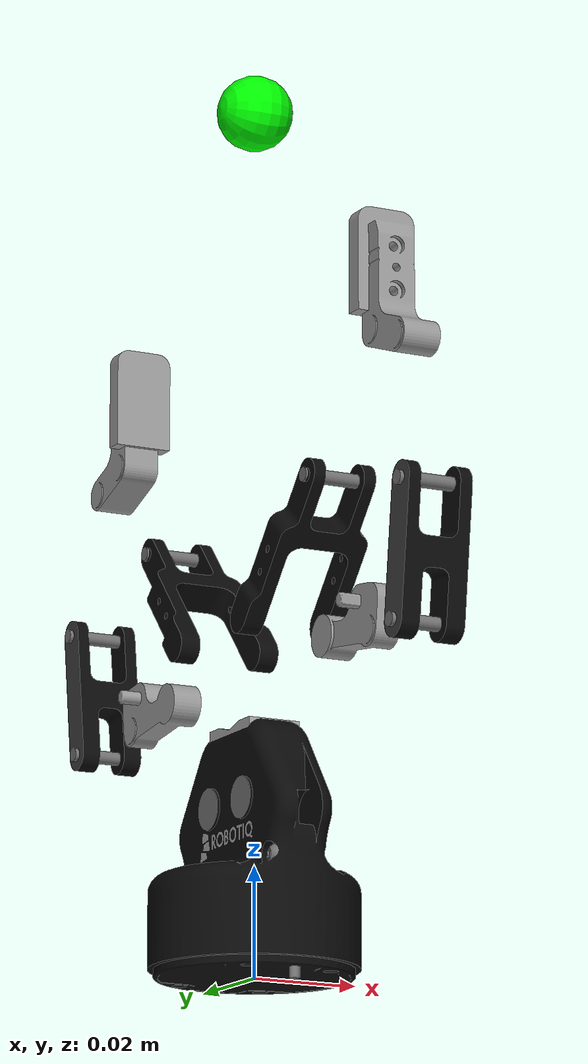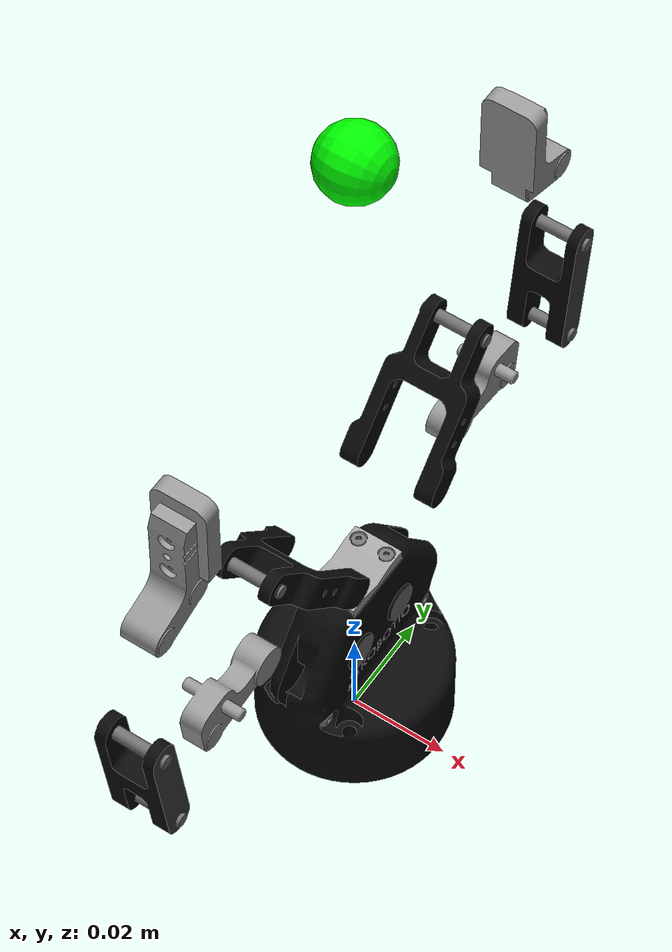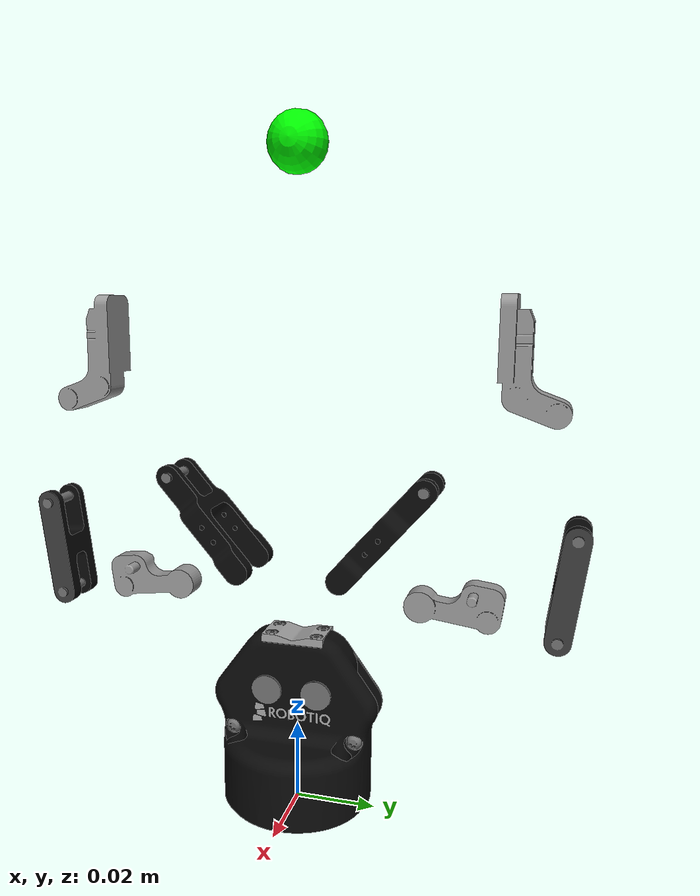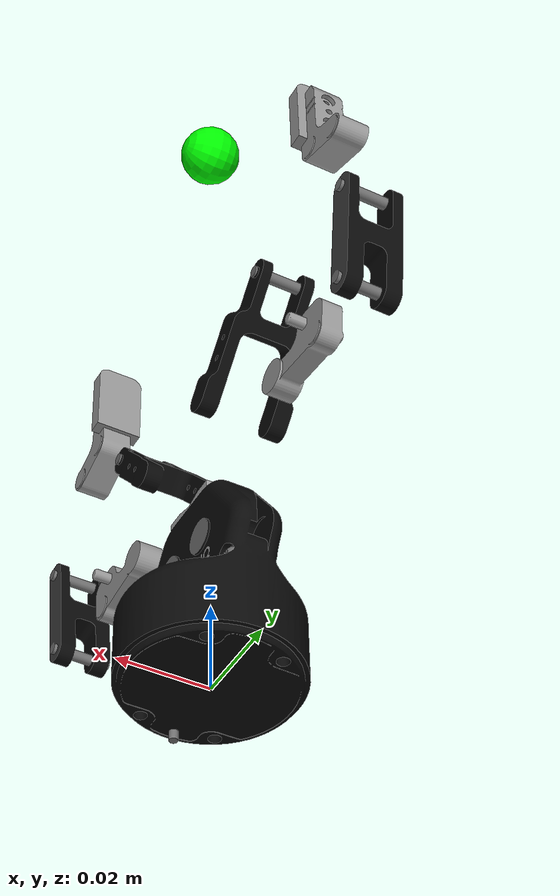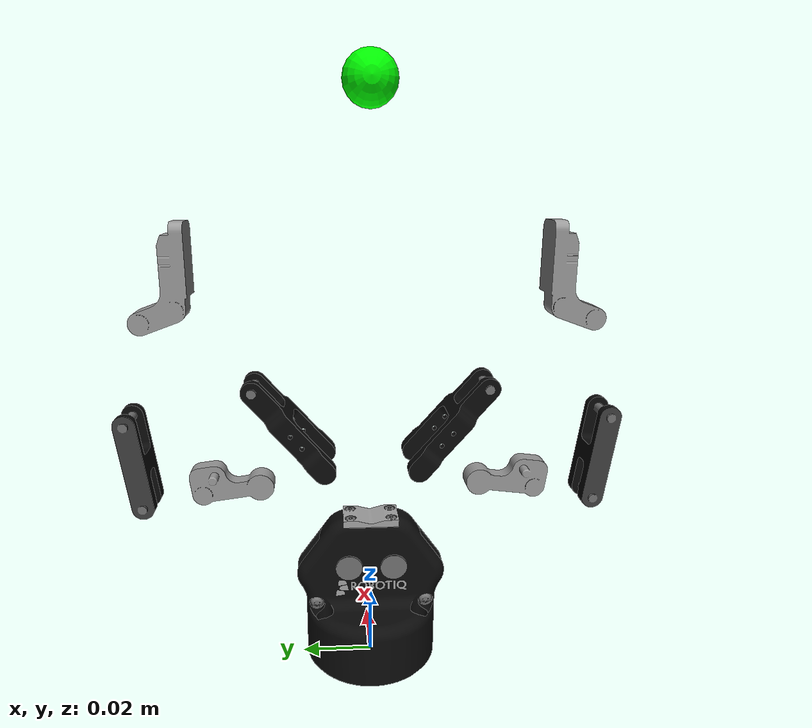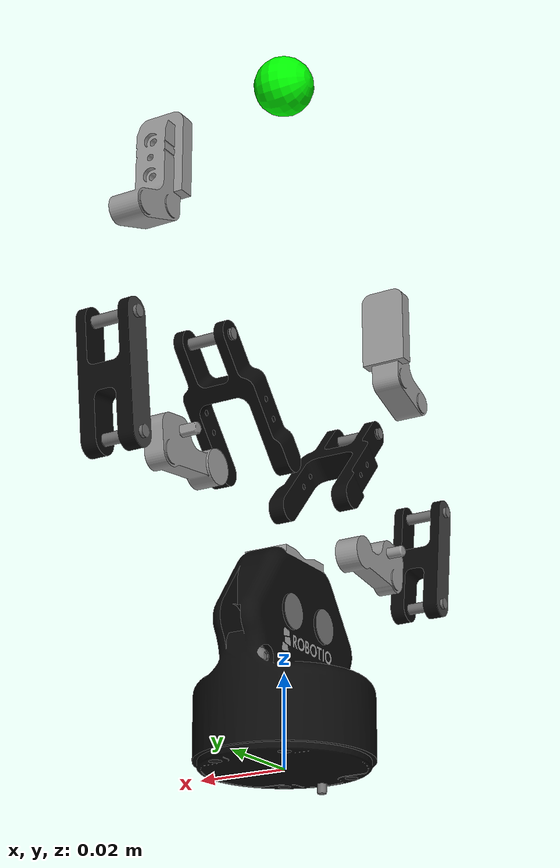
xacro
<?xml version="1.0"?>
<robot name="robotiq_85_gripper_sim_gz" xmlns:xacro="http://ros.org/wiki/xacro">

    <xacro:include filename="$(find robotiq_85_description)/urdf/robotiq_85_gripper_macro.xacro"/>

    <!-- Arguments for parent and origin -->
    <xacro:arg name="prefix" default=""/>
    <xacro:arg name="parent" default="gripper_root_link"/>
    <xacro:arg name="origin_xyz" default="0 0 0"/>
    <xacro:arg name="origin_rpy" default="0 -1.57 0"/>
    <xacro:arg name="simulation_controllers" default="$(find robotiq_85_gz)/config/robotiq_controllers.yaml" />

    <!-- create link fixed to the "world" -->
    <link name="$(arg parent)" />

    <xacro:robotiq_85_gripper prefix="$(arg prefix)" parent="$(arg parent)" >
        <!-- position robot in the parent reference -->
        <origin xyz="$(arg origin_xyz)" rpy="$(arg origin_rpy)" />
    </xacro:robotiq_85_gripper>

    <!-- ros2 control include -->
    <xacro:include filename="$(find robotiq_85_gz)/urdf/robotiq_85_gripper_gz.ros2_control.xacro"/>
    <!-- ros2 control instance -->
    <xacro:robotiq_85_gripper_ros2_control name="RobotiqGripperSystem"/>

    <gazebo reference="$(arg prefix)robotiq_85_left_knuckle_link">
        <kp>1000000.0</kp>
        <kd>100.0</kd>
        <mu1>30.0</mu1>
        <mu2>30.0</mu2>
        <maxVel>1.0</maxVel>
        <minDepth>0.001</minDepth>
        <material>Gazebo/Grey</material>
    </gazebo>

    <gazebo reference="$(arg prefix)robotiq_85_right_knuckle_link">
        <kp>1000000.0</kp>
        <kd>100.0</kd>
        <mu1>30.0</mu1>
        <mu2>30.0</mu2>
        <maxVel>1.0</maxVel>
        <minDepth>0.001</minDepth>
        <material>Gazebo/Grey</material>
    </gazebo>

    <gazebo reference="$(arg prefix)robotiq_85_left_finger_tip_link">
        <kp>1000000.0</kp>
        <kd>100.0</kd>
        <mu1>30.0</mu1>
        <mu2>30.0</mu2>
        <maxVel>1.0</maxVel>
        <minDepth>0.001</minDepth>
        <material>Gazebo/Grey</material>
    </gazebo>

    <gazebo reference="$(arg prefix)robotiq_85_right_finger_tip_link">
        <kp>1000000.0</kp>
        <kd>100.0</kd>
        <mu1>30.0</mu1>
        <mu2>30.0</mu2>
        <maxVel>1.0</maxVel>
        <minDepth>0.001</minDepth>
        <material>Gazebo/Grey</material>
    </gazebo>

    <!-- Gazebo plugins -->
    <gazebo>
      <plugin filename="gz_ros2_control-system" name="gz_ros2_control::GazeboSimROS2ControlPlugin">
            <parameters>$(arg simulation_controllers)</parameters>
      </plugin>
    </gazebo>

</robot>

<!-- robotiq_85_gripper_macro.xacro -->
<robot name="robotiq_85_gripper" xmlns:xacro="http://ros.org/wiki/xacro">

	<xacro:macro name="robotiq_85_gripper" params="prefix parent *origin">

		<joint name="${prefix}robotiq_85_base_joint" type="fixed">
			<parent link="${parent}"/>
			<child link="${prefix}robotiq_85_base_link"/>
			<xacro:insert_block name="origin"/>
		</joint>

		<link name="${prefix}robotiq_85_base_link">
			<!-- Visual aid for grasping -->
			<visual>
				<origin xyz="0.16 0 0" rpy="0 0 0" />
				<geometry>
					<sphere radius="0.007"/>
				</geometry>
				<material name="">
					<color rgba="0 1.0 0 1.0"/>
				</material>
			</visual>
			<!-- Gripper body -->
			<visual>
				<geometry>
					<mesh filename="file://$(find robotiq_85_description)/meshes/visual/robotiq_85_base_link.dae"/>
				</geometry>
			</visual>
			<collision>
				<geometry>
					<mesh filename="file://$(find robotiq_85_description)/meshes/collision/robotiq_85_base_link.stl"/>
				</geometry>
			</collision>
			<inertial>
				<mass value="0.636951" />
				<origin xyz="0.0 0.0 0.0" />
				<inertia ixx = "0.000380" ixy = "0.000000" ixz = "0.000000"
					iyx = "0.000000" iyy = "0.001110" iyz = "0.000000"
					izx = "0.000000" izy = "0.000000" izz = "0.001171" />
			</inertial>
		</link>

		<joint name="${prefix}robotiq_85_left_knuckle_joint" type="revolute">
			<parent link="${prefix}robotiq_85_base_link"/>
			<child link="${prefix}robotiq_85_left_knuckle_link"/>
			<axis xyz="0 0 1"/>
			<origin rpy="${pi} 0.0 0.0" xyz="0.05490451627 0.03060114443 0.0"/>
			<!-- lower is not 0.0 to allow ros2_control to reach the perfect 0 -->
			<limit lower="-0.001" upper="0.804" velocity="0.5" effort="50"/>
			<dynamics damping="100.0" />
		</joint>

		<joint name="${prefix}robotiq_85_right_knuckle_joint" type="continuous">
			<parent link="${prefix}robotiq_85_base_link"/>
			<child link="${prefix}robotiq_85_right_knuckle_link"/>
			<axis xyz="0 0 1"/>
			<origin rpy="0.0 0.0 0.0" xyz="0.05490451627 -0.03060114443 0.0"/>
			<limit lower="-3.14" upper="3.14" velocity="100.0" effort="50"/>
			<mimic joint="${prefix}robotiq_85_left_knuckle_joint"/>
			<dynamics damping="100.0" />
		</joint>

		<link name="${prefix}robotiq_85_left_knuckle_link">
			<visual>
				<geometry>
					<mesh filename="file://$(find robotiq_85_description)/meshes/visual/robotiq_85_knuckle_link.dae"/>
				</geometry>
			</visual>
			<collision>
				<geometry>
					<mesh filename="file://$(find robotiq_85_description)/meshes/collision/robotiq_85_knuckle_link.stl"/>
				</geometry>
			</collision>
			<inertial>
				<mass value="0.018491" />
				<origin xyz="0.0 0.0 0.0" />
				<inertia ixx = "0.000009" ixy = "-0.000001" ixz = "0.000000"
					iyx = "-0.000001" iyy = "0.000001" iyz = "0.000000"
					izx = "0.000000" izy = "0.000000" izz = "0.000010" />
			</inertial>
		</link>

		<link name="${prefix}robotiq_85_right_knuckle_link">
			<visual>
				<geometry>
					<mesh filename="file://$(find robotiq_85_description)/meshes/visual/robotiq_85_knuckle_link.dae"/>
				</geometry>
			</visual>
			<collision>
				<geometry>
					<mesh filename="file://$(find robotiq_85_description)/meshes/collision/robotiq_85_knuckle_link.stl"/>
				</geometry>
			</collision>
			<inertial>
				<mass value="0.018491" />
				<origin xyz="0.0 0.0 0.0" />
				<inertia ixx = "0.000009" ixy = "-0.000001" ixz = "0.000000"
					iyx = "-0.000001" iyy = "0.000001" iyz = "0.000000"
					izx = "0.000000" izy = "0.000000" izz = "0.000010" />
			</inertial>
		</link>

		<joint name="${prefix}robotiq_85_left_finger_joint" type="fixed">
			<parent link="${prefix}robotiq_85_left_knuckle_link"/>
			<child link="${prefix}robotiq_85_left_finger_link"/>
			<origin xyz="-0.00408552455 -0.03148604435 0.0" rpy="0 0 0" />
		</joint>

		<joint name="${prefix}robotiq_85_right_finger_joint" type="fixed">
			<parent link="${prefix}robotiq_85_right_knuckle_link"/>
			<child link="${prefix}robotiq_85_right_finger_link"/>
			<origin xyz="-0.00408552455 -0.03148604435 0.0" rpy="0 0 0" />
		</joint>

		<link name="${prefix}robotiq_85_left_finger_link">
			<visual>
				<geometry>
					<mesh filename="file://$(find robotiq_85_description)/meshes/visual/robotiq_85_finger_link.dae"/>
				</geometry>
			</visual>
			<collision>
				<geometry>
					<mesh filename="file://$(find robotiq_85_description)/meshes/collision/robotiq_85_finger_link.stl"/>
				</geometry>
			</collision>
			<inertial>
				<mass value="0.027309" />
				<origin xyz="0.0 0.0 0.0" />
				<inertia ixx = "0.000003" ixy = "-0.000002" ixz = "0.000000"
					iyx = "-0.000002" iyy = "0.000021" iyz = "0.000000"
					izx = "0.000000" izy = "0.000000" izz = "0.000020" />
			</inertial>
		</link>

		<link name="${prefix}robotiq_85_right_finger_link">
			<visual>
				<geometry>
					<mesh filename="file://$(find robotiq_85_description)/meshes/visual/robotiq_85_finger_link.dae"/>
				</geometry>
			</visual>
			<collision>
				<geometry>
					<mesh filename="file://$(find robotiq_85_description)/meshes/collision/robotiq_85_finger_link.stl"/>
				</geometry>
			</collision>
			<inertial>
				<mass value="0.027309" />
				<origin xyz="0.0 0.0 0.0" />
				<inertia ixx = "0.000003" ixy = "-0.000002" ixz = "0.000000"
					iyx = "-0.000002" iyy = "0.000021" iyz = "0.000000"
					izx = "0.000000" izy = "0.000000" izz = "0.000020" />
			</inertial>
		</link>

		<joint name="${prefix}robotiq_85_left_inner_knuckle_joint" type="continuous">
			<parent link="${prefix}robotiq_85_base_link"/>
			<child link="${prefix}robotiq_85_left_inner_knuckle_link"/>
			<axis xyz="0 0 1"/>
			<origin xyz="0.06142 0.0127 0" rpy="${pi} 0.0 0.0" />
			<limit lower="-3.14" upper="3.14" velocity="100.0" effort="0.1"/>
			<mimic joint="${prefix}robotiq_85_left_knuckle_joint" offset="0"/>
		</joint>

		<joint name="${prefix}robotiq_85_right_inner_knuckle_joint" type="continuous">
			<parent link="${prefix}robotiq_85_base_link"/>
			<child link="${prefix}robotiq_85_right_inner_knuckle_link"/>
			<axis xyz="0 0 1"/>
			<origin xyz="0.06142 -0.0127 0" rpy="0 0 0"/>
			<limit lower="-3.14" upper="3.14" velocity="100.0" effort="0.1"/>
			<mimic joint="${prefix}robotiq_85_left_knuckle_joint" offset="0"/>
		</joint>

		<link name="${prefix}robotiq_85_left_inner_knuckle_link">
			<visual>
				<geometry>
					<mesh filename="file://$(find robotiq_85_description)/meshes/visual/robotiq_85_inner_knuckle_link.dae"/>
				</geometry>
			</visual>
			<collision>
				<geometry>
					<mesh filename="file://$(find robotiq_85_description)/meshes/collision/robotiq_85_inner_knuckle_link.stl"/>
				</geometry>
			</collision>
			<inertial>
				<mass value="0.029951" />
				<origin xyz="0.0 0.0 0.0" />
				<inertia ixx = "0.000039" ixy = "0.000000" ixz = "0.000000"
					iyx = "0.000000" iyy = "0.000005" iyz = "0.000000"
					izx = "0.000000" izy = "0.000000" izz = "0.000035" />
			</inertial>
		</link>

		<link name="${prefix}robotiq_85_right_inner_knuckle_link">
			<visual>
				<geometry>
					<mesh filename="file://$(find robotiq_85_description)/meshes/visual/robotiq_85_inner_knuckle_link.dae"/>
				</geometry>
			</visual>
			<collision>
				<geometry>
					<mesh filename="file://$(find robotiq_85_description)/meshes/collision/robotiq_85_inner_knuckle_link.stl"/>
				</geometry>
			</collision>
			<inertial>
				<mass value="0.029951" />
				<origin xyz="0.0 0.0 0.0" />
				<inertia ixx = "0.000039" ixy = "0.000000" ixz = "0.000000"
					iyx = "0.000000" iyy = "0.000005" iyz = "0.000000"
					izx = "0.000000" izy = "0.000000" izz = "0.000035" />
			</inertial>
		</link>

		<joint name="${prefix}robotiq_85_left_finger_tip_joint" type="continuous">
			<parent link="${prefix}robotiq_85_left_inner_knuckle_link"/>
			<child link="${prefix}robotiq_85_left_finger_tip_link"/>
			<axis xyz="0 0 1"/>
			<origin xyz="0.04303959807 -0.03759940821 0.0" rpy="0.0 0.0 0.0"/>
			<limit lower="-3.14" upper="3.14" velocity="100.0" effort="0.1"/>
			<mimic joint="${prefix}robotiq_85_left_knuckle_joint" multiplier="-1"/>
		</joint>

		<joint name="${prefix}robotiq_85_right_finger_tip_joint" type="continuous">
			<parent link="${prefix}robotiq_85_right_inner_knuckle_link"/>
			<child link="${prefix}robotiq_85_right_finger_tip_link"/>
			<axis xyz="0 0 1"/>
			<origin rpy="0.0 0.0 0.0" xyz="0.04303959807 -0.03759940821  0.0"/>
			<limit lower="-3.14" upper="3.14" velocity="100.0" effort="0.1"/>
			<mimic joint="${prefix}robotiq_85_left_knuckle_joint" multiplier="-1"/>
		</joint>

		<link name="${prefix}robotiq_85_left_finger_tip_link">
			<visual>
				<geometry>
					<mesh filename="file://$(find robotiq_85_description)/meshes/visual/robotiq_85_finger_tip_link.dae"/>
				</geometry>
			</visual>
			<collision>
				<geometry>
					<mesh filename="file://$(find robotiq_85_description)/meshes/collision/robotiq_85_finger_tip_link.stl"/>
				</geometry>
			</collision>
			<inertial>
				<mass value="0.019555" />
				<origin xyz="0.0 0.0 0.0" />
				<inertia ixx = "0.000002" ixy = "0.000000" ixz = "0.000000"
					iyx = "0.000000" iyy = "0.000005" iyz = "0.000000"
					izx = "0.000000" izy = "0.000000" izz = "0.000006" />
			</inertial>
		</link>

		<link name="${prefix}robotiq_85_right_finger_tip_link">
			<visual>
				<geometry>
					<mesh filename="file://$(find robotiq_85_description)/meshes/visual/robotiq_85_finger_tip_link.dae"/>
				</geometry>
			</visual>
			<collision>
				<geometry>
					<mesh filename="file://$(find robotiq_85_description)/meshes/collision/robotiq_85_finger_tip_link.stl"/>
				</geometry>
			</collision>
			<inertial>
				<mass value="0.019555" />
				<origin xyz="0.0 0.0 0.0" />
				<inertia ixx = "0.000002" ixy = "0.000000" ixz = "0.000000"
					iyx = "0.000000" iyy = "0.000005" iyz = "0.000000"
					izx = "0.000000" izy = "0.000000" izz = "0.000006" />
			</inertial>
		</link>

	</xacro:macro>
</robot>
